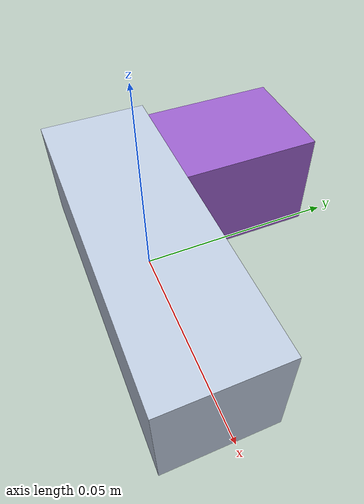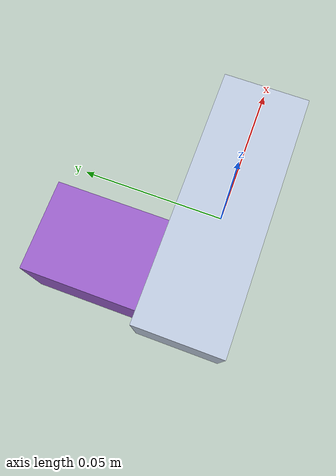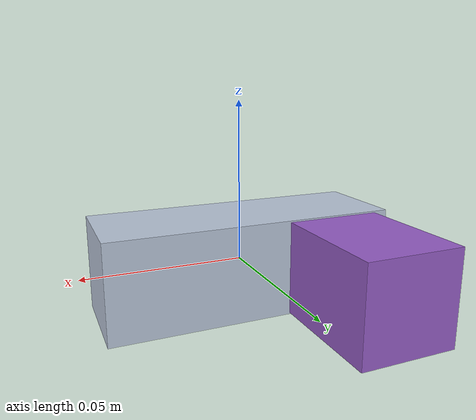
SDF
<sdf version="1.4"><world name="default"><model name="object0"><link name="link1"><pose>0 0 0 0 0 0</pose><inertial><pose>0 0 0 0 0 0</pose><mass>0.04863404142919258</mass><inertia><ixx>7.295106214378887e-06</ixx><ixy>0</ixy><iyy>3.652153529669871e-05</iyy><ixz>0</ixz><iyz>0</iyz><izz>3.652153529669871e-05</izz></inertia></inertial><visual name="link1_visual"><pose>0 0  0 0 0 0</pose><geometry><box><size>0.09006303968368998 0.03 0.03</size></box></geometry><material><diffuse>0.7321765379311314 0.7829424561837328 0.8600619444611992 1</diffuse></material></visual><collision><pose>0 0  0 0 0 0</pose><geometry><box><size>0.09006303968368998 0.03 0.03</size></box></geometry></collision></link><link name="link2"><pose>-0.025571438308973432 0.03272945676429595 0 0 0 0</pose><inertial><pose>0 0 0 0 0 0</pose><mass>0.021836023835456384</mass><inertia><ixx>4.5057862445735055e-06</ixx><ixy>0</ixy><iyy>3.16804312479413e-06</iyy><ixz>0</ixz><iyz>0</iyz><izz>4.613146695097833e-06</izz></inertia></inertial><visual name="link2_visual"><pose>0 0  0 0 0 0</pose><geometry><box><size>0.03 0.040437081176771084 0.028999999999999998</size></box></geometry><material><diffuse>0.5944220068966478 0.369731940133328 0.7840149950561283 1</diffuse></material></visual><collision><pose>0 0  0 0 0 0</pose><geometry><box><size>0.03 0.040437081176771084 0.028999999999999998</size></box></geometry></collision></link><joint name="link_joint_0" type="fixed"><parent>link1</parent><child>link2</child><pose>0 0 0 0 0 0</pose><axis><xyz>0 0 1</xyz></axis></joint></model></world></sdf>
